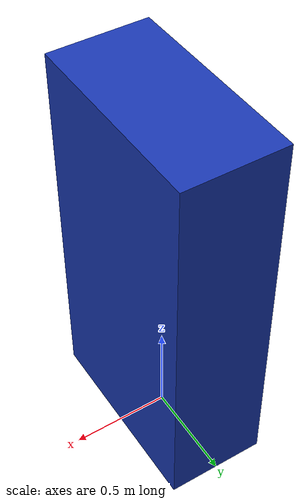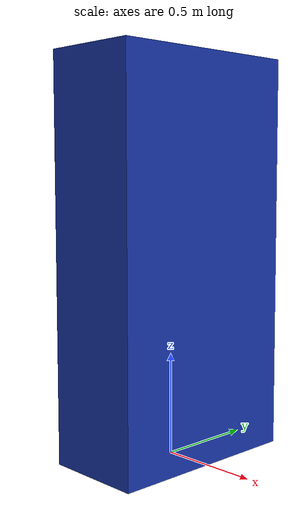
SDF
<?xml version="1.0"?>
<sdf version="1.9">
  <model name="room314_closet1">
    <static>true</static>
    <link name="room314_closet1_link">
      <visual name="room314_closet1_visual">
        <pose>-0.25 -0.5 0 0 0 0</pose>
        <geometry>
          <mesh>
            <uri>model://room314_closet1/meshes/CLOSET1.stl</uri>
          </mesh>
        </geometry>
        <material>
          <ambient>0.10 0.22 0.70 1.0</ambient>
          <diffuse>0.10 0.22 0.70 1.0</diffuse>
          <specular>0.18 0.18 0.18 1.0</specular>
          <emissive>0.0 0.0 0.0 0.0</emissive>
        </material>
      </visual>
      <collision name="room314_closet1_collision">
        <pose>-0.25 -0.5 0 0 0 0</pose>
        <geometry>
          <mesh>
            <uri>model://room314_closet1/meshes/CLOSET1.stl</uri>
          </mesh>
        </geometry>
      </collision>
    </link>
  </model>
</sdf>
